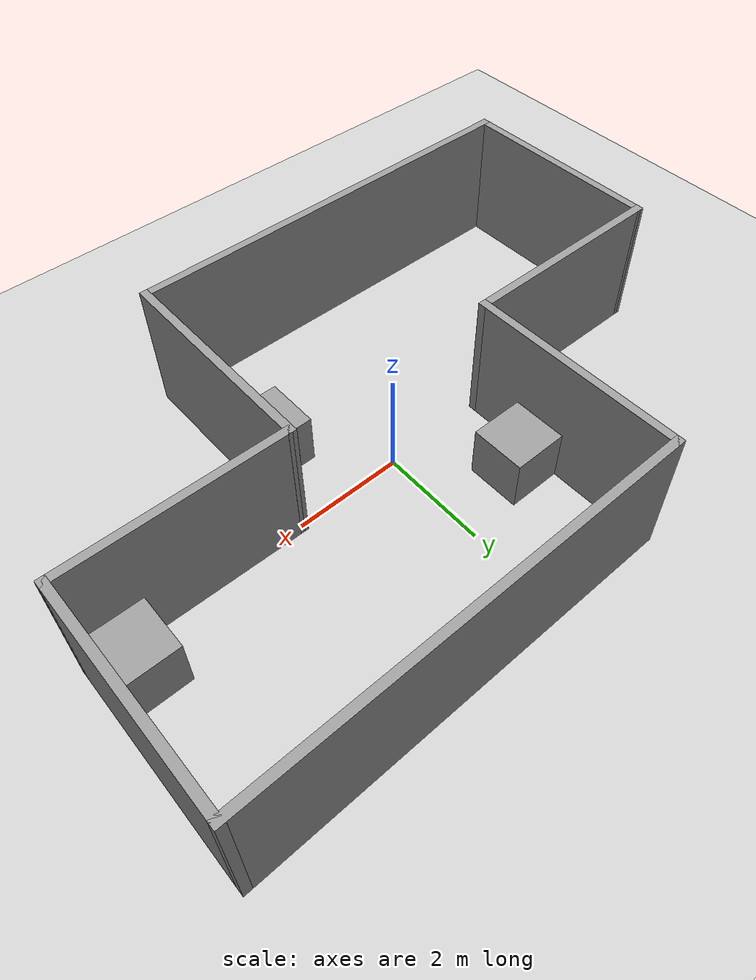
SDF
<sdf version="1.6">
 <world name="default">
  <light name="sun" type="directional">
   <pose>0 0 10 0 -0 0</pose>
   <diffuse>0.8 0.8 0.8 1</diffuse>
   <specular>0.1 0.1 0.1 1</specular>
   <attenuation>
    <range>1000</range>
    <constant>0.9</constant>
    <linear>0.01</linear>
    <quadratic>0.001</quadratic>
   </attenuation>
   <direction>-0.5 0.5 -1</direction>
  </light>
  <model name="ground_plane">
   <static>1</static>
   <link name="link">
    <collision name="collision">
     <geometry><plane><normal>0 0 1</normal><size>100 100</size></plane></geometry>
     <surface><friction><ode><mu>100</mu><mu2>50</mu2></ode></friction></surface>
    </collision>
    <visual name="visual">
     <cast_shadows>0</cast_shadows>
     <geometry><plane><normal>0 0 1</normal><size>100 100</size></plane></geometry>
     <material>
      <script><uri>file://media/materials/scripts/gazebo.material</uri><name>Gazebo/Grey</name></script>
     </material>
    </visual>
   </link>
  </model>
  <gravity>0 0 -9.8</gravity>
  <magnetic_field>6e-06 2.3e-05 -4.2e-05</magnetic_field>
  <atmosphere type="adiabatic"/>
  <physics name="default_physics" default="0" type="ode">
   <max_step_size>0.001</max_step_size>
   <real_time_factor>1</real_time_factor>
   <real_time_update_rate>1000</real_time_update_rate>
  </physics>
  <scene><ambient>0.4 0.4 0.4 1</ambient><background>0.7 0.7 0.7 1</background><shadows>1</shadows></scene>
  <spherical_coordinates>
   <surface_model>EARTH_WGS84</surface_model>
   <latitude_deg>0</latitude_deg>
   <longitude_deg>0</longitude_deg>
   <elevation>0</elevation>
   <heading_deg>0</heading_deg>
  </spherical_coordinates>
  <model name="z_room">
   <link name="Wall_0">
    <collision name="Wall_0_Collision">
     <geometry><box><size>8 0.15 2.5</size></box></geometry>
     <pose>0 0 1.25 0 -0 0</pose>
    </collision>
    <visual name="Wall_0_Visual">
     <pose>0 0 1.25 0 -0 0</pose>
     <geometry><box><size>8 0.15 2.5</size></box></geometry>
     <material>
      <script><uri>file://media/materials/scripts/gazebo.material</uri><name>Gazebo/Grey</name></script>
      <ambient>1 1 1 1</ambient>
     </material>
    </visual>
    <pose>-1.91186 -3.84974 0 0 -0 0</pose>
   </link>
   <link name="Wall_1">
    <collision name="Wall_1_Collision">
     <geometry><box><size>4.04023 0.15 2.5</size></box></geometry>
     <pose>0 0 1.25 0 -0 0</pose>
    </collision>
    <visual name="Wall_1_Visual">
     <pose>0 0 1.25 0 -0 0</pose>
     <geometry><box><size>4.04023 0.15 2.5</size></box></geometry>
     <material>
      <script><uri>file://media/materials/scripts/gazebo.material</uri><name>Gazebo/Grey</name></script>
      <ambient>1 1 1 1</ambient>
     </material>
    </visual>
    <pose>2.01314 -1.90463 0 0 -0 1.5708</pose>
   </link>
   <link name="Wall_10">
    <collision name="Wall_10_Collision">
     <geometry><box><size>4.02645 0.15 2.5</size></box></geometry>
     <pose>0 0 1.25 0 -0 0</pose>
    </collision>
    <visual name="Wall_10_Visual">
     <pose>0 0 1.25 0 -0 0</pose>
     <geometry><box><size>4.02645 0.15 2.5</size></box></geometry>
     <material>
      <script><uri>file://media/materials/scripts/gazebo.material</uri><name>Gazebo/Grey</name></script>
      <ambient>1 1 1 1</ambient>
     </material>
    </visual>
    <pose>-3.92508 0.000257 0 0 -0 3.14159</pose>
   </link>
   <link name="Wall_13">
    <collision name="Wall_13_Collision">
     <geometry><box><size>4.00009 0.15 2.5</size></box></geometry>
     <pose>0 0 1.25 0 -0 0</pose>
    </collision>
    <visual name="Wall_13_Visual">
     <pose>0 0 1.25 0 -0 0</pose>
     <geometry><box><size>4.00009 0.15 2.5</size></box></geometry>
     <material>
      <script><uri>file://media/materials/scripts/gazebo.material</uri><name>Gazebo/Grey</name></script>
      <ambient>1 1 1 1</ambient>
     </material>
    </visual>
    <pose>-5.85008 -1.92474 0 0 0 -1.56393</pose>
   </link>
   <link name="Wall_3">
    <collision name="Wall_3_Collision">
     <geometry><box><size>4 0.15 2.5</size></box></geometry>
     <pose>0 0 1.25 0 -0 0</pose>
    </collision>
    <visual name="Wall_3_Visual">
     <pose>0 0 1.25 0 -0 0</pose>
     <geometry><box><size>4 0.15 2.5</size></box></geometry>
     <material>
      <script><uri>file://media/materials/scripts/gazebo.material</uri><name>Gazebo/Grey</name></script>
      <ambient>1 1 1 1</ambient>
     </material>
    </visual>
    <pose>3.93815 0.02037 0 0 0 -0.010448</pose>
   </link>
   <link name="Wall_7">
    <collision name="Wall_7_Collision">
     <geometry><box><size>4 0.15 2.5</size></box></geometry>
     <pose>0 0 1.25 0 -0 0</pose>
    </collision>
    <visual name="Wall_7_Visual">
     <pose>0 0 1.25 0 -0 0</pose>
     <geometry><box><size>4 0.15 2.5</size></box></geometry>
     <material>
      <script><uri>file://media/materials/scripts/gazebo.material</uri><name>Gazebo/Grey</name></script>
      <ambient>1 1 1 1</ambient>
     </material>
    </visual>
    <pose>5.86314 1.92526 0 0 -0 1.5708</pose>
   </link>
   <link name="Wall_8">
    <collision name="Wall_8_Collision">
     <geometry><box><size>8 0.15 2.5</size></box></geometry>
     <pose>0 0 1.25 0 -0 0</pose>
    </collision>
    <visual name="Wall_8_Visual">
     <pose>0 0 1.25 0 -0 0</pose>
     <geometry><box><size>8 0.15 2.5</size></box></geometry>
     <material>
      <script><uri>file://media/materials/scripts/gazebo.material</uri><name>Gazebo/Grey</name></script>
      <ambient>1 1 1 1</ambient>
     </material>
    </visual>
    <pose>1.93814 3.85026 0 0 -0 3.14159</pose>
   </link>
   <link name="Wall_9">
    <collision name="Wall_9_Collision">
     <geometry><box><size>4 0.15 2.5</size></box></geometry>
     <pose>0 0 1.25 0 -0 0</pose>
    </collision>
    <visual name="Wall_9_Visual">
     <pose>0 0 1.25 0 -0 0</pose>
     <geometry><box><size>4 0.15 2.5</size></box></geometry>
     <material>
      <script><uri>file://media/materials/scripts/gazebo.material</uri><name>Gazebo/Grey</name></script>
      <ambient>1 1 1 1</ambient>
     </material>
    </visual>
    <pose>-1.98686 1.92526 0 0 0 -1.5708</pose>
   </link>
   <static>1</static>
  </model>
  <model name="unit_box_0">
   <pose>-1.41186 1.5 0.5 0 0 -6e-06</pose>
   <link name="link">
    <inertial>
     <mass>1</mass>
     <inertia>
      <ixx>0.166667</ixx>
      <ixy>0</ixy>
      <ixz>0</ixz>
      <iyy>0.166667</iyy>
      <iyz>0</iyz>
      <izz>0.166667</izz>
     </inertia>
    </inertial>
    <collision name="collision"><geometry><box><size>1 1 1</size></box></geometry></collision>
    <visual name="visual">
     <geometry><box><size>1 1 1</size></box></geometry>
     <material>
      <script><name>Gazebo/Grey</name><uri>file://media/materials/scripts/gazebo.material</uri></script>
     </material>
    </visual>
   </link>
  </model>
  <model name="unit_box_1">
   <pose>1.43813 -1.50001 0.499995 1e-05 -0 1.3e-05</pose>
   <link name="link">
    <inertial>
     <mass>1</mass>
     <inertia>
      <ixx>0.166667</ixx>
      <ixy>0</ixy>
      <ixz>0</ixz>
      <iyy>0.166667</iyy>
      <iyz>0</iyz>
      <izz>0.166667</izz>
     </inertia>
    </inertial>
    <collision name="collision"><geometry><box><size>1 1 1</size></box></geometry></collision>
    <visual name="visual">
     <geometry><box><size>1 1 1</size></box></geometry>
     <material>
      <script><name>Gazebo/Grey</name><uri>file://media/materials/scripts/gazebo.material</uri></script>
     </material>
    </visual>
   </link>
  </model>
  <model name="unit_box_2">
   <pose>5.28449 0.583101 0.5 0 0 -0.007243</pose>
   <link name="link">
    <inertial>
     <mass>1</mass>
     <inertia>
      <ixx>0.166667</ixx>
      <ixy>0</ixy>
      <ixz>0</ixz>
      <iyy>0.166667</iyy>
      <iyz>0</iyz>
      <izz>0.166667</izz>
     </inertia>
    </inertial>
    <collision name="collision"><geometry><box><size>1 1 1</size></box></geometry></collision>
    <visual name="visual">
     <geometry><box><size>1 1 1</size></box></geometry>
     <material>
      <script><name>Gazebo/Grey</name><uri>file://media/materials/scripts/gazebo.material</uri></script>
     </material>
    </visual>
   </link>
  </model>
  <model name="unit_box_3">
   <pose>-5.28399 -0.577885 0.499995 0 1e-05 0.006228</pose>
   <link name="link">
    <inertial>
     <mass>1</mass>
     <inertia>
      <ixx>0.166667</ixx>
      <ixy>0</ixy>
      <ixz>0</ixz>
      <iyy>0.166667</iyy>
      <iyz>0</iyz>
      <izz>0.166667</izz>
     </inertia>
    </inertial>
    <collision name="collision"><geometry><box><size>1 1 1</size></box></geometry></collision>
    <visual name="visual">
     <geometry><box><size>1 1 1</size></box></geometry>
     <material>
      <script><name>Gazebo/Grey</name><uri>file://media/materials/scripts/gazebo.material</uri></script>
     </material>
    </visual>
   </link>
  </model>
  <light name="user_directional_light_0" type="directional">
   <pose>-0.668868 -0.318124 1 0 -0 0</pose>
   <diffuse>0.5 0.5 0.5 1</diffuse>
   <specular>0.1 0.1 0.1 1</specular>
   <direction>0.1 0.1 -0.9</direction>
   <attenuation>
    <range>20</range>
    <constant>0.5</constant>
    <linear>0.01</linear>
    <quadratic>0.001</quadratic>
   </attenuation>
  </light>
  <light name="user_directional_light_1" type="directional">
   <pose>5.02009 -3.44398 1 0 -0 0</pose>
   <diffuse>0.5 0.5 0.5 1</diffuse>
   <specular>0.1 0.1 0.1 1</specular>
   <direction>0.1 0.1 -0.9</direction>
   <attenuation>
    <range>20</range>
    <constant>0.5</constant>
    <linear>0.01</linear>
    <quadratic>0.001</quadratic>
   </attenuation>
  </light>
 </world>
</sdf>
